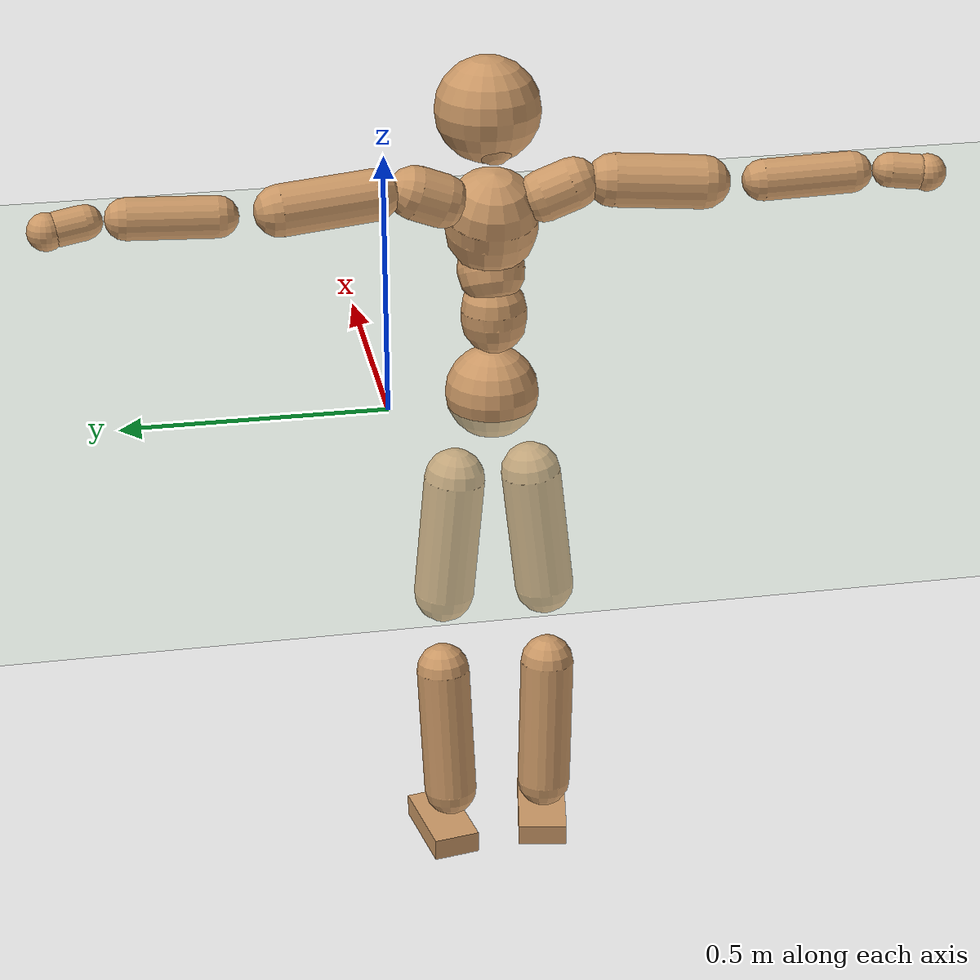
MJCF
<mujoco model="humanoid">
  <compiler coordinate="local"/>
  <default>
    <joint damping="0.0" armature="0.01" stiffness="0.0" limited="true"/>
    <geom conaffinity="1" condim="3" contype="7" margin="0.001" rgba="0.8 0.6 .4 1"/>
  </default>
  <asset>
    <texture type="skybox" builtin="gradient" rgb1=".4 .5 .6" rgb2="0 0 0" width="100" height="100"/>
    <texture builtin="flat" height="1278" mark="cross" markrgb="1 1 1" name="texgeom" random="0.01" rgb1="0.8 0.6 0.4" rgb2="0.8 0.6 0.4" type="cube" width="127"/>
    <texture builtin="checker" height="100" name="texplane" rgb1="0 0 0" rgb2="0.8 0.8 0.8" type="2d" width="100"/>
    <material name="MatPlane" reflectance="0.5" shininess="1" specular="1" texrepeat="60 60" texture="texplane"/>
    <material name="geom" texture="texgeom" texuniform="true"/>
  </asset>
  <worldbody>
    <light cutoff="100" diffuse="1 1 1" dir="-0 0 -1.3" directional="true" exponent="1" pos="0 0 1.3" specular=".1 .1 .1"/>
    <geom conaffinity="1" condim="3" name="floor" pos="0 0 0" rgba="0.8 0.9 0.8 1" size="100 100 .2" type="plane" material="MatPlane"/>
    <body name="Pelvis" pos="-0.0016 -0.1959 0.0223">
      <freejoint name="Pelvis"/>
      <geom type="sphere" contype="1" conaffinity="1" density="500" size="0.0882" pos="0.0000 0.0000 0.0000" name="Pelvis"/>
      <body name="L_Hip" pos="-0.0126 0.0667 -0.0893">
        <joint name="L_Hip_x" type="hinge" pos="0 0 0" axis="1 0 0" stiffness="800" damping="80" armature="0.02" range="-180.0000 180.0000"/>
        <joint name="L_Hip_y" type="hinge" pos="0 0 0" axis="0 1 0" stiffness="800" damping="80" armature="0.02" range="-180.0000 180.0000"/>
        <joint name="L_Hip_z" type="hinge" pos="0 0 0" axis="0 0 1" stiffness="800" damping="80" armature="0.02" range="-180.0000 180.0000"/>
        <geom type="capsule" contype="1" conaffinity="1" density="500" fromto="-0.0007 0.0076 -0.0810 -0.0030 0.0305 -0.3238" size="0.0578" name="L_Hip"/>
        <body name="L_Knee" pos="-0.0037 0.0382 -0.4048">
          <joint name="L_Knee_x" type="hinge" pos="0 0 0" axis="1 0 0" stiffness="800" damping="80" armature="0.02" range="-180.0000 180.0000"/>
          <joint name="L_Knee_y" type="hinge" pos="0 0 0" axis="0 1 0" stiffness="800" damping="80" armature="0.02" range="-180.0000 180.0000"/>
          <joint name="L_Knee_z" type="hinge" pos="0 0 0" axis="0 0 1" stiffness="800" damping="80" armature="0.02" range="-180.0000 180.0000"/>
          <geom type="capsule" contype="1" conaffinity="1" density="500" fromto="-0.0088 -0.0028 -0.0870 -0.0353 -0.0110 -0.3481" size="0.0515" name="L_Knee"/>
          <body name="L_Ankle" pos="-0.0441 -0.0138 -0.4351">
            <joint name="L_Ankle_x" type="hinge" pos="0 0 0" axis="1 0 0" stiffness="800" damping="80" armature="0.02" range="-180.0000 180.0000"/>
            <joint name="L_Ankle_y" type="hinge" pos="0 0 0" axis="0 1 0" stiffness="800" damping="80" armature="0.02" range="-180.0000 180.0000"/>
            <joint name="L_Ankle_z" type="hinge" pos="0 0 0" axis="0 0 1" stiffness="800" damping="80" armature="0.02" range="-180.0000 180.0000"/>
            <geom type="box" contype="1" conaffinity="1" density="500" pos="0.0616 0.0105 -0.0305" size="0.0873 0.0453 0.0218" quat="0.9964 0.0000 0.0000 0.0845" name="L_Ankle"/>
            <body name="L_Toe" pos="0.1233 0.021 -0.0609">
              <joint name="L_Toe_x" type="hinge" pos="0 0 0" axis="1 0 0" stiffness="500" damping="50" armature="0.02" range="-180.0000 180.0000"/>
              <joint name="L_Toe_y" type="hinge" pos="0 0 0" axis="0 1 0" stiffness="500" damping="50" armature="0.02" range="-180.0000 180.0000"/>
              <joint name="L_Toe_z" type="hinge" pos="0 0 0" axis="0 0 1" stiffness="500" damping="50" armature="0.02" range="-180.0000 180.0000"/>
              <geom type="box" contype="1" conaffinity="1" density="500" pos="0.0000 0.0000 0.0296" size="0.001 0.0023 0.001" quat="0.9959 0.0000 0.0000 0.0909" name="L_Toe"/>
            </body>
          </body>
        </body>
      </body>
      <body name="R_Hip" pos="-0.0078 -0.0644 -0.0885">
        <joint name="R_Hip_x" type="hinge" pos="0 0 0" axis="1 0 0" stiffness="800" damping="80" armature="0.02" range="-180.0000 180.0000"/>
        <joint name="R_Hip_y" type="hinge" pos="0 0 0" axis="0 1 0" stiffness="800" damping="80" armature="0.02" range="-180.0000 180.0000"/>
        <joint name="R_Hip_z" type="hinge" pos="0 0 0" axis="0 0 1" stiffness="800" damping="80" armature="0.02" range="-180.0000 180.0000"/>
        <geom type="capsule" contype="1" conaffinity="1" density="500" fromto="-0.0013 -0.0089 -0.0820 -0.0051 -0.0357 -0.3281" size="0.057" name="R_Hip"/>
        <body name="R_Knee" pos="-0.0064 -0.0446 -0.4101">
          <joint name="R_Knee_x" type="hinge" pos="0 0 0" axis="1 0 0" stiffness="800" damping="80" armature="0.02" range="-180.0000 180.0000"/>
          <joint name="R_Knee_y" type="hinge" pos="0 0 0" axis="0 1 0" stiffness="800" damping="80" armature="0.02" range="-180.0000 180.0000"/>
          <joint name="R_Knee_z" type="hinge" pos="0 0 0" axis="0 0 1" stiffness="800" damping="80" armature="0.02" range="-180.0000 180.0000"/>
          <geom type="capsule" contype="1" conaffinity="1" density="500" fromto="-0.0083 0.0033 -0.0868 -0.0333 0.0133 -0.3474" size="0.0518" name="R_Knee"/>
          <body name="R_Ankle" pos="-0.0416 0.0166 -0.4342">
            <joint name="R_Ankle_x" type="hinge" pos="0 0 0" axis="1 0 0" stiffness="800" damping="80" armature="0.02" range="-180.0000 180.0000"/>
            <joint name="R_Ankle_y" type="hinge" pos="0 0 0" axis="0 1 0" stiffness="800" damping="80" armature="0.02" range="-180.0000 180.0000"/>
            <joint name="R_Ankle_z" type="hinge" pos="0 0 0" axis="0 0 1" stiffness="800" damping="80" armature="0.02" range="-180.0000 180.0000"/>
            <geom type="box" contype="1" conaffinity="1" density="500" pos="0.0635 -0.0110 -0.0255" size="0.0895 0.0476 0.0212" quat="0.9964 0.0000 0.0000 -0.0853" name="R_Ankle"/>
            <body name="R_Toe" pos="0.127 -0.0219 -0.0511">
              <joint name="R_Toe_x" type="hinge" pos="0 0 0" axis="1 0 0" stiffness="500" damping="50" armature="0.02" range="-180.0000 180.0000"/>
              <joint name="R_Toe_y" type="hinge" pos="0 0 0" axis="0 1 0" stiffness="500" damping="50" armature="0.02" range="-180.0000 180.0000"/>
              <joint name="R_Toe_z" type="hinge" pos="0 0 0" axis="0 0 1" stiffness="500" damping="50" armature="0.02" range="-180.0000 180.0000"/>
              <geom type="box" contype="1" conaffinity="1" density="500" pos="0.0000 0.0000 0.0277" size="0.0009 0.0023 0.0012" quat="0.9971 0.0000 0.0000 -0.0765" name="R_Toe"/>
            </body>
          </body>
        </body>
      </body>
      <body name="Torso" pos="-0.0171 -0.0025 0.1026">
        <joint name="Torso_x" type="hinge" pos="0 0 0" axis="1 0 0" stiffness="1000" damping="100" armature="0.02" range="-180.0000 180.0000"/>
        <joint name="Torso_y" type="hinge" pos="0 0 0" axis="0 1 0" stiffness="1000" damping="100" armature="0.02" range="-180.0000 180.0000"/>
        <joint name="Torso_z" type="hinge" pos="0 0 0" axis="0 0 1" stiffness="1000" damping="100" armature="0.02" range="-180.0000 180.0000"/>
        <geom type="capsule" contype="1" conaffinity="1" density="500" fromto="0.0009 0.0021 0.0736 0.0006 0.0014 0.0490" size="0.060915" name="Torso"/>
        <body name="Spine" pos="0.0015 0.0034 0.1226">
          <joint name="Spine_x" type="hinge" pos="0 0 0" axis="1 0 0" stiffness="1000" damping="100" armature="0.02" range="-180.0000 180.0000"/>
          <joint name="Spine_y" type="hinge" pos="0 0 0" axis="0 1 0" stiffness="1000" damping="100" armature="0.02" range="-180.0000 180.0000"/>
          <joint name="Spine_z" type="hinge" pos="0 0 0" axis="0 0 1" stiffness="1000" damping="100" armature="0.02" range="-180.0000 180.0000"/>
          <geom type="capsule" contype="1" conaffinity="1" density="500" fromto="0.0147 0.0015 0.0287 0.0098 0.0010 0.0191" size="0.062403" name="Spine"/>
          <body name="Chest" pos="0.0245 0.0025 0.0478">
            <joint name="Chest_x" type="hinge" pos="0 0 0" axis="1 0 0" stiffness="1000" damping="100" armature="0.02" range="-180.0000 180.0000"/>
            <joint name="Chest_y" type="hinge" pos="0 0 0" axis="0 1 0" stiffness="1000" damping="100" armature="0.02" range="-180.0000 180.0000"/>
            <joint name="Chest_z" type="hinge" pos="0 0 0" axis="0 0 1" stiffness="1000" damping="100" armature="0.02" range="-180.0000 180.0000"/>
            <geom type="capsule" contype="1" conaffinity="1" density="500" fromto="-0.0248 -0.0012 0.0895 -0.0165 -0.0008 0.0596" size="0.085653" name="Chest"/>
            <body name="Neck" pos="-0.0454 -0.0039 0.2123">
              <joint name="Neck_x" type="hinge" pos="0 0 0" axis="1 0 0" stiffness="500" damping="50" armature="0.02" range="-180.0000 180.0000"/>
              <joint name="Neck_y" type="hinge" pos="0 0 0" axis="0 1 0" stiffness="500" damping="50" armature="0.02" range="-180.0000 180.0000"/>
              <joint name="Neck_z" type="hinge" pos="0 0 0" axis="0 0 1" stiffness="500" damping="50" armature="0.02" range="-180.0000 180.0000"/>
              <geom type="capsule" contype="1" conaffinity="1" density="500" fromto="0.0104 0.0009 0.0129 0.0417 0.0036 0.0518" size="0.03813" name="Neck"/>
              <body name="Head" pos="0.0522 0.0045 0.0647">
                <joint name="Head_x" type="hinge" pos="0 0 0" axis="1 0 0" stiffness="500" damping="50" armature="0.02" range="-180.0000 180.0000"/>
                <joint name="Head_y" type="hinge" pos="0 0 0" axis="0 1 0" stiffness="500" damping="50" armature="0.02" range="-180.0000 180.0000"/>
                <joint name="Head_z" type="hinge" pos="0 0 0" axis="0 0 1" stiffness="500" damping="50" armature="0.02" range="-180.0000 180.0000"/>
                <geom type="sphere" contype="1" conaffinity="1" density="500" size="0.0973" pos="0.0000 0.0000 0.0000" name="Head"/>
              </body>
            </body>
            <body name="L_Thorax" pos="-0.0378 0.0738 0.1182">
              <joint name="L_Thorax_x" type="hinge" pos="0 0 0" axis="1 0 0" stiffness="500" damping="50" armature="0.02" range="-180.0000 180.0000"/>
              <joint name="L_Thorax_y" type="hinge" pos="0 0 0" axis="0 1 0" stiffness="500" damping="50" armature="0.02" range="-180.0000 180.0000"/>
              <joint name="L_Thorax_z" type="hinge" pos="0 0 0" axis="0 0 1" stiffness="500" damping="50" armature="0.02" range="-180.0000 180.0000"/>
              <geom type="capsule" contype="1" conaffinity="1" density="500" fromto="-0.0011 0.0171 0.0069 -0.0042 0.0684 0.0276" size="0.0493" name="L_Thorax"/>
              <body name="L_Shoulder" pos="-0.0053 0.0855 0.0345">
                <joint name="L_Shoulder_x" type="hinge" pos="0 0 0" axis="1 0 0" stiffness="500" damping="50" armature="0.02" range="-720.0000 720.0000"/>
                <joint name="L_Shoulder_y" type="hinge" pos="0 0 0" axis="0 1 0" stiffness="500" damping="50" armature="0.02" range="-720.0000 720.0000"/>
                <joint name="L_Shoulder_z" type="hinge" pos="0 0 0" axis="0 0 1" stiffness="500" damping="50" armature="0.02" range="-720.0000 720.0000"/>
                <geom type="capsule" contype="1" conaffinity="1" density="500" fromto="-0.0056 0.0567 -0.0037 -0.0225 0.2268 -0.0148" size="0.0475" name="L_Shoulder"/>
                <body name="L_Elbow" pos="-0.0281 0.2835 -0.0185">
                  <joint name="L_Elbow_x" type="hinge" pos="0 0 0" axis="1 0 0" stiffness="500" damping="50" armature="0.02" range="-720.0000 720.0000"/>
                  <joint name="L_Elbow_y" type="hinge" pos="0 0 0" axis="0 1 0" stiffness="500" damping="50" armature="0.02" range="-720.0000 720.0000"/>
                  <joint name="L_Elbow_z" type="hinge" pos="0 0 0" axis="0 0 1" stiffness="500" damping="50" armature="0.02" range="-720.0000 720.0000"/>
                  <geom type="capsule" contype="1" conaffinity="1" density="500" fromto="-0.0002 0.0535 0.0023 -0.0010 0.2140 0.0093" size="0.0378" name="L_Elbow"/>
                  <body name="L_Wrist" pos="-0.0012 0.2675 0.0117">
                    <joint name="L_Wrist_x" type="hinge" pos="0 0 0" axis="1 0 0" stiffness="300" damping="30" armature="0.02" range="-180.0000 180.0000"/>
                    <joint name="L_Wrist_y" type="hinge" pos="0 0 0" axis="0 1 0" stiffness="300" damping="30" armature="0.02" range="-180.0000 180.0000"/>
                    <joint name="L_Wrist_z" type="hinge" pos="0 0 0" axis="0 0 1" stiffness="300" damping="30" armature="0.02" range="-180.0000 180.0000"/>
                    <geom type="capsule" contype="1" conaffinity="1" density="500" fromto="-0.0029 0.0171 -0.0021 -0.0115 0.0683 -0.0084" size="0.0315" name="L_Wrist"/>
                    <body name="L_Hand" pos="-0.0144 0.0853 -0.0106">
                      <joint name="L_Hand_x" type="hinge" pos="0 0 0" axis="1 0 0" stiffness="300" damping="30" armature="0.02" range="-180.0000 180.0000"/>
                      <joint name="L_Hand_y" type="hinge" pos="0 0 0" axis="0 1 0" stiffness="300" damping="30" armature="0.02" range="-180.0000 180.0000"/>
                      <joint name="L_Hand_z" type="hinge" pos="0 0 0" axis="0 0 1" stiffness="300" damping="30" armature="0.02" range="-180.0000 180.0000"/>
                      <geom type="sphere" contype="1" conaffinity="1" density="500" size="0.0341" pos="0.0000 0.0000 0.0000" name="L_Hand"/>
                    </body>
                  </body>
                </body>
              </body>
            </body>
            <body name="R_Thorax" pos="-0.0406 -0.0758 0.1168">
              <joint name="R_Thorax_x" type="hinge" pos="0 0 0" axis="1 0 0" stiffness="500" damping="50" armature="0.02" range="-180.0000 180.0000"/>
              <joint name="R_Thorax_y" type="hinge" pos="0 0 0" axis="0 1 0" stiffness="500" damping="50" armature="0.02" range="-180.0000 180.0000"/>
              <joint name="R_Thorax_z" type="hinge" pos="0 0 0" axis="0 0 1" stiffness="500" damping="50" armature="0.02" range="-180.0000 180.0000"/>
              <geom type="capsule" contype="1" conaffinity="1" density="500" fromto="-0.0014 -0.0176 0.0071 -0.0054 -0.0704 0.0286" size="0.0482" name="R_Thorax"/>
              <body name="R_Shoulder" pos="-0.0068 -0.088 0.0357">
                <joint name="R_Shoulder_x" type="hinge" pos="0 0 0" axis="1 0 0" stiffness="500" damping="50" armature="0.02" range="-720.0000 720.0000"/>
                <joint name="R_Shoulder_y" type="hinge" pos="0 0 0" axis="0 1 0" stiffness="500" damping="50" armature="0.02" range="-720.0000 720.0000"/>
                <joint name="R_Shoulder_z" type="hinge" pos="0 0 0" axis="0 0 1" stiffness="500" damping="50" armature="0.02" range="-720.0000 720.0000"/>
                <geom type="capsule" contype="1" conaffinity="1" density="500" fromto="-0.0038 -0.0548 -0.0037 -0.0153 -0.2193 -0.0146" size="0.0494" name="R_Shoulder"/>
                <body name="R_Elbow" pos="-0.0191 -0.2741 -0.0183">
                  <joint name="R_Elbow_x" type="hinge" pos="0 0 0" axis="1 0 0" stiffness="500" damping="50" armature="0.02" range="-720.0000 720.0000"/>
                  <joint name="R_Elbow_y" type="hinge" pos="0 0 0" axis="0 1 0" stiffness="500" damping="50" armature="0.02" range="-720.0000 720.0000"/>
                  <joint name="R_Elbow_z" type="hinge" pos="0 0 0" axis="0 0 1" stiffness="500" damping="50" armature="0.02" range="-720.0000 720.0000"/>
                  <geom type="capsule" contype="1" conaffinity="1" density="500" fromto="-0.0012 -0.0549 0.0020 -0.0047 -0.2198 0.0078" size="0.0382" name="R_Elbow"/>
                  <body name="R_Wrist" pos="-0.0059 -0.2747 0.0098">
                    <joint name="R_Wrist_x" type="hinge" pos="0 0 0" axis="1 0 0" stiffness="300" damping="30" armature="0.02" range="-180.0000 180.0000"/>
                    <joint name="R_Wrist_y" type="hinge" pos="0 0 0" axis="0 1 0" stiffness="300" damping="30" armature="0.02" range="-180.0000 180.0000"/>
                    <joint name="R_Wrist_z" type="hinge" pos="0 0 0" axis="0 0 1" stiffness="300" damping="30" armature="0.02" range="-180.0000 180.0000"/>
                    <geom type="capsule" contype="1" conaffinity="1" density="500" fromto="-0.0023 -0.0173 -0.0016 -0.0090 -0.0692 -0.0064" size="0.0324" name="R_Wrist"/>
                    <body name="R_Hand" pos="-0.0113 -0.0865 -0.008">
                      <joint name="R_Hand_x" type="hinge" pos="0 0 0" axis="1 0 0" stiffness="300" damping="30" armature="0.02" range="-180.0000 180.0000"/>
                      <joint name="R_Hand_y" type="hinge" pos="0 0 0" axis="0 1 0" stiffness="300" damping="30" armature="0.02" range="-180.0000 180.0000"/>
                      <joint name="R_Hand_z" type="hinge" pos="0 0 0" axis="0 0 1" stiffness="300" damping="30" armature="0.02" range="-180.0000 180.0000"/>
                      <geom type="sphere" contype="1" conaffinity="1" density="500" size="0.0344" pos="0.0000 0.0000 0.0000" name="R_Hand"/>
                    </body>
                  </body>
                </body>
              </body>
            </body>
          </body>
        </body>
      </body>
    </body>
  </worldbody>
  <actuator>
    <motor name="L_Hip_x" joint="L_Hip_x" gear="500"/>
    <motor name="L_Hip_y" joint="L_Hip_y" gear="500"/>
    <motor name="L_Hip_z" joint="L_Hip_z" gear="500"/>
    <motor name="L_Knee_x" joint="L_Knee_x" gear="500"/>
    <motor name="L_Knee_y" joint="L_Knee_y" gear="500"/>
    <motor name="L_Knee_z" joint="L_Knee_z" gear="500"/>
    <motor name="L_Ankle_x" joint="L_Ankle_x" gear="500"/>
    <motor name="L_Ankle_y" joint="L_Ankle_y" gear="500"/>
    <motor name="L_Ankle_z" joint="L_Ankle_z" gear="500"/>
    <motor name="L_Toe_x" joint="L_Toe_x" gear="500"/>
    <motor name="L_Toe_y" joint="L_Toe_y" gear="500"/>
    <motor name="L_Toe_z" joint="L_Toe_z" gear="500"/>
    <motor name="R_Hip_x" joint="R_Hip_x" gear="500"/>
    <motor name="R_Hip_y" joint="R_Hip_y" gear="500"/>
    <motor name="R_Hip_z" joint="R_Hip_z" gear="500"/>
    <motor name="R_Knee_x" joint="R_Knee_x" gear="500"/>
    <motor name="R_Knee_y" joint="R_Knee_y" gear="500"/>
    <motor name="R_Knee_z" joint="R_Knee_z" gear="500"/>
    <motor name="R_Ankle_x" joint="R_Ankle_x" gear="500"/>
    <motor name="R_Ankle_y" joint="R_Ankle_y" gear="500"/>
    <motor name="R_Ankle_z" joint="R_Ankle_z" gear="500"/>
    <motor name="R_Toe_x" joint="R_Toe_x" gear="500"/>
    <motor name="R_Toe_y" joint="R_Toe_y" gear="500"/>
    <motor name="R_Toe_z" joint="R_Toe_z" gear="500"/>
    <motor name="Torso_x" joint="Torso_x" gear="500"/>
    <motor name="Torso_y" joint="Torso_y" gear="500"/>
    <motor name="Torso_z" joint="Torso_z" gear="500"/>
    <motor name="Spine_x" joint="Spine_x" gear="500"/>
    <motor name="Spine_y" joint="Spine_y" gear="500"/>
    <motor name="Spine_z" joint="Spine_z" gear="500"/>
    <motor name="Chest_x" joint="Chest_x" gear="500"/>
    <motor name="Chest_y" joint="Chest_y" gear="500"/>
    <motor name="Chest_z" joint="Chest_z" gear="500"/>
    <motor name="Neck_x" joint="Neck_x" gear="500"/>
    <motor name="Neck_y" joint="Neck_y" gear="500"/>
    <motor name="Neck_z" joint="Neck_z" gear="500"/>
    <motor name="Head_x" joint="Head_x" gear="500"/>
    <motor name="Head_y" joint="Head_y" gear="500"/>
    <motor name="Head_z" joint="Head_z" gear="500"/>
    <motor name="L_Thorax_x" joint="L_Thorax_x" gear="500"/>
    <motor name="L_Thorax_y" joint="L_Thorax_y" gear="500"/>
    <motor name="L_Thorax_z" joint="L_Thorax_z" gear="500"/>
    <motor name="L_Shoulder_x" joint="L_Shoulder_x" gear="500"/>
    <motor name="L_Shoulder_y" joint="L_Shoulder_y" gear="500"/>
    <motor name="L_Shoulder_z" joint="L_Shoulder_z" gear="500"/>
    <motor name="L_Elbow_x" joint="L_Elbow_x" gear="500"/>
    <motor name="L_Elbow_y" joint="L_Elbow_y" gear="500"/>
    <motor name="L_Elbow_z" joint="L_Elbow_z" gear="500"/>
    <motor name="L_Wrist_x" joint="L_Wrist_x" gear="500"/>
    <motor name="L_Wrist_y" joint="L_Wrist_y" gear="500"/>
    <motor name="L_Wrist_z" joint="L_Wrist_z" gear="500"/>
    <motor name="L_Hand_x" joint="L_Hand_x" gear="500"/>
    <motor name="L_Hand_y" joint="L_Hand_y" gear="500"/>
    <motor name="L_Hand_z" joint="L_Hand_z" gear="500"/>
    <motor name="R_Thorax_x" joint="R_Thorax_x" gear="500"/>
    <motor name="R_Thorax_y" joint="R_Thorax_y" gear="500"/>
    <motor name="R_Thorax_z" joint="R_Thorax_z" gear="500"/>
    <motor name="R_Shoulder_x" joint="R_Shoulder_x" gear="500"/>
    <motor name="R_Shoulder_y" joint="R_Shoulder_y" gear="500"/>
    <motor name="R_Shoulder_z" joint="R_Shoulder_z" gear="500"/>
    <motor name="R_Elbow_x" joint="R_Elbow_x" gear="500"/>
    <motor name="R_Elbow_y" joint="R_Elbow_y" gear="500"/>
    <motor name="R_Elbow_z" joint="R_Elbow_z" gear="500"/>
    <motor name="R_Wrist_x" joint="R_Wrist_x" gear="500"/>
    <motor name="R_Wrist_y" joint="R_Wrist_y" gear="500"/>
    <motor name="R_Wrist_z" joint="R_Wrist_z" gear="500"/>
    <motor name="R_Hand_x" joint="R_Hand_x" gear="500"/>
    <motor name="R_Hand_y" joint="R_Hand_y" gear="500"/>
    <motor name="R_Hand_z" joint="R_Hand_z" gear="500"/>
  </actuator>
  <contact>
    <exclude body1="Torso" body2="Chest"/>
    <exclude body1="Head" body2="Chest"/>
    <exclude body1="R_Knee" body2="R_Toe"/>
    <exclude body1="R_Knee" body2="L_Ankle"/>
    <exclude body1="R_Knee" body2="L_Toe"/>
    <exclude body1="L_Knee" body2="L_Toe"/>
    <exclude body1="L_Knee" body2="R_Ankle"/>
    <exclude body1="L_Knee" body2="R_Toe"/>
    <exclude body1="L_Shoulder" body2="Chest"/>
    <exclude body1="R_Shoulder" body2="Chest"/>
  </contact>
  <sensor/>
  <size njmax="700" nconmax="700"/>
</mujoco>
